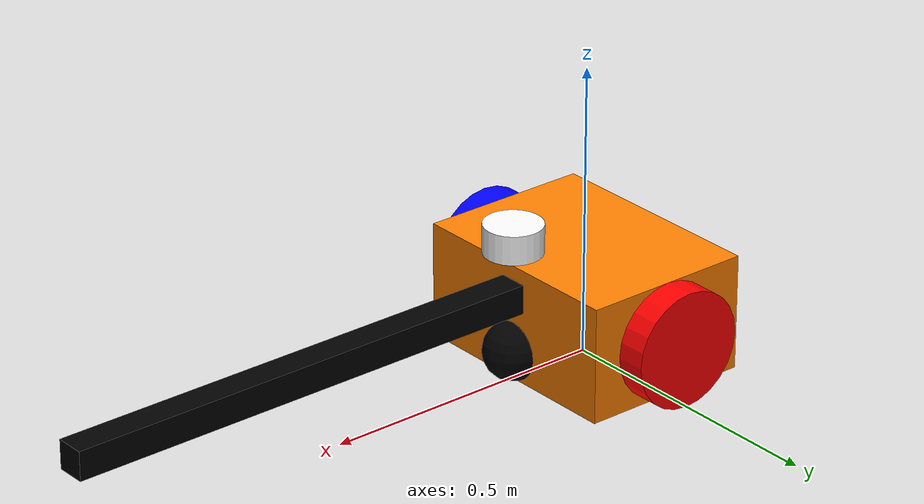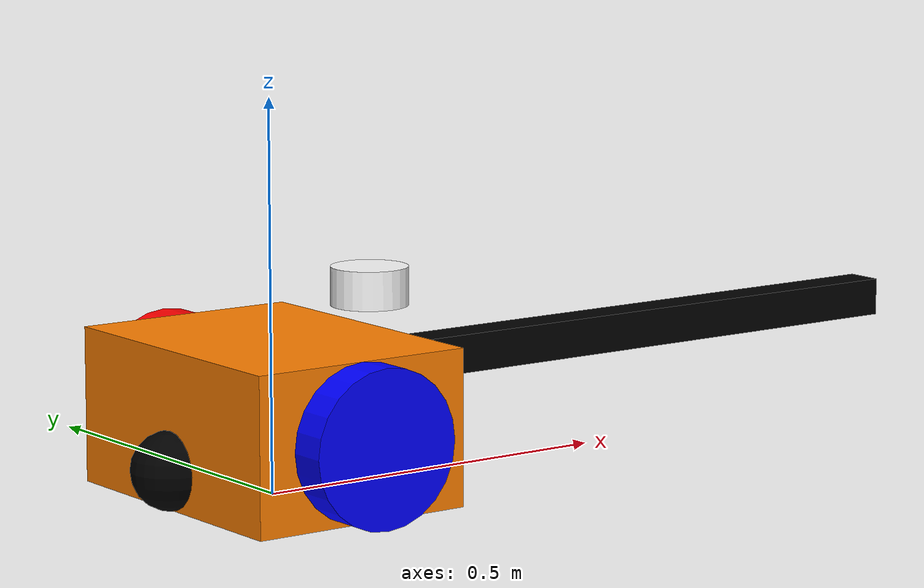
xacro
<?xml version="1.0"?>
<robot name="diffbot" xmlns:xacro="http://www.ros.org/wiki/xacro">
  <!-- Materials -->
  <material name="black">
    <color rgba="0 0 0 1"/>
  </material>
  <material name="orange">
    <color rgba="1 0.5 0 1"/>
  </material>
  <material name="white">
    <color rgba="1 1 1 1"/>
  </material>
  <material name="red">
    <color rgba="1 0 0 1"/>
  </material>
  <material name="blue">
    <color rgba="0 0 1 1"/>
  </material>

  <!-- Base -->
  <link name="base_link">
    <visual>
      <origin xyz="0 0 0.1" rpy="0 0 0"/>
      <geometry>
        <box size="0.3 0.4 0.2"/>
      </geometry>
      <material name="orange"/>
    </visual>
    <collision>
      <origin xyz="0 0 0.1" rpy="0 0 0"/>
      <geometry>
        <box size="0.3 0.4 0.2"/>
      </geometry>
    </collision>
    <inertial>
      <mass value="5.0"/>
      <origin xyz="0 0 0.1" rpy="0 0 0"/>
      <inertia ixx="0.1" ixy="0.0" ixz="0.0" iyy="0.1" iyz="0.0" izz="0.1"/>
    </inertial>
  </link>

  <!-- Left Wheel -->
  <link name="left_wheel_link">
    <visual>
      <origin xyz="0 0 0" rpy="1.5707 0 0"/>
      <geometry>
        <cylinder length="0.05" radius="0.1"/>
      </geometry>
      <material name="red"/>
    </visual>
    <collision>
      <origin xyz="0 0 0" rpy="1.5707 0 0"/>
      <geometry>
        <cylinder length="0.05" radius="0.1"/>
      </geometry>
    </collision>
    <inertial>
      <mass value="0.5"/>
      <origin xyz="0 0 0" rpy="1.5707 0 0"/>
      <inertia ixx="0.001" ixy="0.0" ixz="0.0" iyy="0.001" iyz="0.0" izz="0.001"/>
    </inertial>
  </link>

  <joint name="left_wheel_joint" type="continuous">
    <parent link="base_link"/>
    <child link="left_wheel_link"/>
    <origin xyz="0 0.225 0.1" rpy="0 0 0"/>
    <axis xyz="0 1 0"/>
    <dynamics damping="0.1" friction="0.1"/>
  </joint>

  <!-- Right Wheel -->
  <link name="right_wheel_link">
    <visual>
      <origin xyz="0 0 0" rpy="1.5707 0 0"/>
      <geometry>
        <cylinder length="0.05" radius="0.1"/>
      </geometry>
      <material name="blue"/>
    </visual>
    <collision>
      <origin xyz="0 0 0" rpy="1.5707 0 0"/>
      <geometry>
        <cylinder length="0.05" radius="0.1"/>
      </geometry>
    </collision>
    <inertial>
      <mass value="0.5"/>
      <origin xyz="0 0 0" rpy="1.5707 0 0"/>
      <inertia ixx="0.001" ixy="0.0" ixz="0.0" iyy="0.001" iyz="0.0" izz="0.001"/>
    </inertial>
  </link>

  <joint name="right_wheel_joint" type="continuous">
    <parent link="base_link"/>
    <child link="right_wheel_link"/>
    <origin xyz="0 -0.225 0.1" rpy="0 0 0"/>
    <axis xyz="0 1 0"/>
    <dynamics damping="0.1" friction="0.1"/>
  </joint>

  <!-- Caster Wheel Front -->
  <link name="caster_front_link">
    <visual>
      <origin xyz="0 0 0" rpy="0 0 0"/>
      <geometry>
        <sphere radius="0.05"/>
      </geometry>
      <material name="black"/>
    </visual>
    <collision>
      <origin xyz="0 0 0" rpy="0 0 0"/>
      <geometry>
        <sphere radius="0.05"/>
      </geometry>
    </collision>
    <inertial>
      <mass value="0.1"/>
      <origin xyz="0 0 0" rpy="0 0 0"/>
      <inertia ixx="0.0001" ixy="0.0" ixz="0.0" iyy="0.0001" iyz="0.0" izz="0.0001"/>
    </inertial>
  </link>

  <joint name="caster_front_joint" type="fixed">
    <parent link="base_link"/>
    <child link="caster_front_link"/>
    <origin xyz="0.15 0 0.05" rpy="0 0 0"/>
  </joint>

  <!-- Caster Wheel Back -->
  <link name="caster_back_link">
    <visual>
      <origin xyz="0 0 0" rpy="0 0 0"/>
      <geometry>
        <sphere radius="0.05"/>
      </geometry>
      <material name="black"/>
    </visual>
    <collision>
      <origin xyz="0 0 0" rpy="0 0 0"/>
      <geometry>
        <sphere radius="0.05"/>
      </geometry>
    </collision>
    <inertial>
      <mass value="0.1"/>
      <origin xyz="0 0 0" rpy="0 0 0"/>
      <inertia ixx="0.0001" ixy="0.0" ixz="0.0" iyy="0.0001" iyz="0.0" izz="0.0001"/>
    </inertial>
  </link>

  <joint name="caster_back_joint" type="fixed">
    <parent link="base_link"/>
    <child link="caster_back_link"/>
    <origin xyz="-0.15 0 0.05" rpy="0 0 0"/>
  </joint>

  <!-- Laser -->
  <link name="laser_link">
    <visual>
      <origin xyz="0 0 0" rpy="0 0 0"/>
      <geometry>
        <cylinder length="0.05" radius="0.05"/>
      </geometry>
      <material name="white"/>
    </visual>
    <collision>
      <origin xyz="0 0 0" rpy="0 0 0"/>
      <geometry>
        <cylinder length="0.05" radius="0.05"/>
      </geometry>
    </collision>
    <inertial>
      <mass value="0.5"/>
      <origin xyz="0 0 0" rpy="0 0 0"/>
      <inertia ixx="0.001" ixy="0.0" ixz="0.0" iyy="0.001" iyz="0.0" izz="0.001"/>
    </inertial>
  </link>

  <joint name="laser_joint" type="fixed">
    <parent link="base_link"/>
    <child link="laser_link"/>
    <origin xyz="0.15 0 0.25" rpy="0 0 0"/>
  </joint>

  <!-- IMU -->
  <link name="imu_link">
    <visual>
      <origin xyz="0 0 0" rpy="0 0 0"/>
      <geometry>
        <box size="0.05 0.05 0.02"/>
      </geometry>
      <material name="white"/>
    </visual>
    <collision>
      <origin xyz="0 0 0" rpy="0 0 0"/>
      <geometry>
        <box size="0.05 0.05 0.02"/>
      </geometry>
    </collision>
    <inertial>
      <mass value="0.2"/>
      <origin xyz="0 0 0" rpy="0 0 0"/>
      <inertia ixx="0.0001" ixy="0.0" ixz="0.0" iyy="0.0001" iyz="0.0" izz="0.0001"/>
    </inertial>
  </link>

  <joint name="imu_joint" type="fixed">
    <parent link="base_link"/>
    <child link="imu_link"/>
    <origin xyz="0 0 0.15" rpy="0 0 0"/>
  </joint>

  <!-- Arm -->
  <link name="arm_link">
    <visual>
      <origin xyz="0.5 0 0" rpy="0 0 0"/>
      <geometry>
        <box size="1.0 0.05 0.05"/>
      </geometry>
      <material name="black"/>
    </visual>
    <collision>
      <origin xyz="0.5 0 0" rpy="0 0 0"/>
      <geometry>
        <box size="1.0 0.05 0.05"/>
      </geometry>
    </collision>
    <inertial>
      <mass value="1.0"/>
      <origin xyz="0.5 0 0" rpy="0 0 0"/>
      <inertia ixx="0.01" ixy="0.0" ixz="0.0" iyy="0.01" iyz="0.0" izz="0.01"/>
    </inertial>
  </link>

  <joint name="arm_joint" type="fixed">
    <parent link="base_link"/>
    <child link="arm_link"/>
    <origin xyz="0 0 0.15" rpy="0 0 0"/>
  </joint>

  <!-- ROS2 Control -->
  <ros2_control name="DiffBotSystem" type="system">
    <hardware>
      <plugin>diffdrive_arduino/DiffDriveArduino</plugin>
      <param name="left_wheel_name">left_wheel_joint</param>
      <param name="right_wheel_name">right_wheel_joint</param>
      <param name="loop_rate">30</param>
      <param name="device">/dev/ttyACM0</param>
      <param name="baud_rate">57600</param>
      <param name="timeout">1000</param>
      <param name="enc_counts_per_rev">1440</param>
    </hardware>
    <joint name="left_wheel_joint">
      <command_interface name="velocity">
        <param name="min">-10</param>
        <param name="max">10</param>
      </command_interface>
      <state_interface name="position"/>
      <state_interface name="velocity"/>
    </joint>
    <joint name="right_wheel_joint">
      <command_interface name="velocity">
        <param name="min">-10</param>
        <param name="max">10</param>
      </command_interface>
      <state_interface name="position"/>
      <state_interface name="velocity"/>
    </joint>
  </ros2_control>

  <!-- Gazebo -->
  <gazebo>
    <plugin name="gazebo_ros2_control" filename="libgazebo_ros2_control.so">
      <parameters>$(find keyboard_teleop_pkg)/config/diffbot_controllers.yaml</parameters>
    </plugin>
  </gazebo>

  <!-- Gazebo colors -->
  <gazebo reference="base_link">
    <material>Gazebo/Orange</material>
  </gazebo>
  <gazebo reference="left_wheel_link">
    <material>Gazebo/Red</material>
  </gazebo>
  <gazebo reference="right_wheel_link">
    <material>Gazebo/Blue</material>
  </gazebo>
  <gazebo reference="caster_front_link">
    <material>Gazebo/Black</material>
    <mu1>0.0</mu1>
    <mu2>0.0</mu2>
  </gazebo>
  <gazebo reference="caster_back_link">
    <material>Gazebo/Black</material>
    <mu1>0.0</mu1>
    <mu2>0.0</mu2>
  </gazebo>
  <gazebo reference="laser_link">
    <material>Gazebo/White</material>
  </gazebo>
  <gazebo reference="imu_link">
    <material>Gazebo/White</material>
  </gazebo>
  <gazebo reference="arm_link">
    <material>Gazebo/Black</material>
  </gazebo>

  <!-- Laser Sensor -->
  <gazebo reference="laser_link">
    <sensor name="laser" type="ray">
      <pose>0 0 0 0 0 0</pose>
      <visualize>true</visualize>
      <update_rate>10</update_rate>
      <ray>
        <scan>
          <horizontal>
            <samples>360</samples>
            <resolution>1</resolution>
            <min_angle>-3.14159</min_angle>
            <max_angle>3.14159</max_angle>
          </horizontal>
        </scan>
        <range>
          <min>0.1</min>
          <max>12.0</max>
          <resolution>0.01</resolution>
        </range>
      </ray>
      <plugin name="laser_controller" filename="libgazebo_ros_ray_sensor.so">
        <ros>
          <namespace>/</namespace>
          <remapping>~/out:=scan</remapping>
        </ros>
        <output_type>sensor_msgs/LaserScan</output_type>
        <frame_name>laser_link</frame_name>
      </plugin>
    </sensor>
  </gazebo>

  <!-- IMU Sensor -->
  <gazebo reference="imu_link">
    <gravity>true</gravity>
    <sensor name="imu_sensor" type="imu">
      <always_on>true</always_on>
      <update_rate>100</update_rate>
      <visualize>true</visualize>
      <plugin name="imu_plugin" filename="libgazebo_ros_imu_sensor.so">
        <ros>
          <namespace>/</namespace>
          <remapping>~/out:=imu</remapping>
        </ros>
        <frame_name>imu_link</frame_name>
      </plugin>
    </sensor>
  </gazebo>
</robot>
